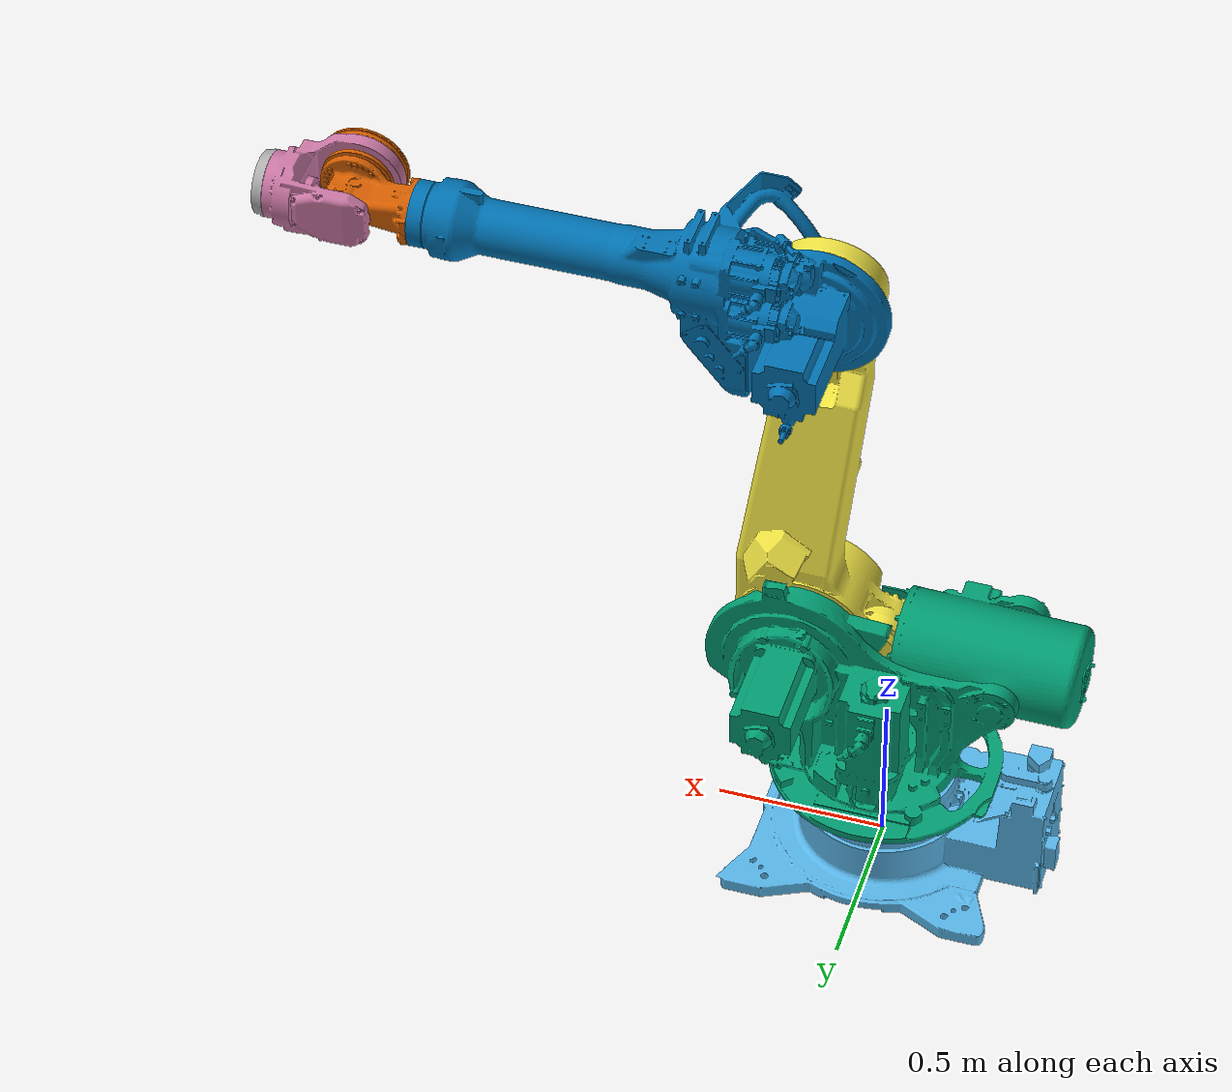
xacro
<?xml version="1.0" ?>
<robot name="$(arg robot_name)" xmlns:xacro="http://ros.org/wiki/xacro">

  <xacro:arg name="robot_name" default="motoman" />
  <xacro:arg name="prefix" default="" />

  <link name="world" />
  <joint name="$(arg prefix)base_link-world" type="fixed">
    <origin xyz="0 0 0" rpy="0 0 0"/>
    <parent link="$(arg prefix)base_link"/>
    <child link="world"/>
  </joint>

  <xacro:include filename="$(find motoman_gp250_support)/urdf/gp250_macro.xacro" />
  <xacro:motoman_gp250 prefix="$(arg prefix)"/>
</robot>

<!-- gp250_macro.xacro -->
<robot xmlns:xacro="http://ros.org/wiki/xacro">
  <xacro:macro name="motoman_gp250" params="prefix">
    <xacro:include filename="$(find motoman_resources)/urdf/common_materials.xacro"/>

    <!-- link list -->
    <link name="${prefix}base_link">
        <visual>
            <geometry>
                <mesh filename="package://motoman_gp250_support/meshes/gp250/visual/base_link_visual.stl"/>
            </geometry>
            <xacro:material_yaskawa_blue/>
        </visual>
        <collision>
            <geometry>
                <mesh filename="package://motoman_gp250_support/meshes/gp250/collision/base_link_collision.stl"/>
            </geometry>
        </collision>
    </link>
    <link name="${prefix}link_1">
        <visual>
            <geometry>
                <mesh filename="package://motoman_gp250_support/meshes/gp250/visual/link_1_s_visual.stl"/>
            </geometry>
            <xacro:material_yaskawa_blue/>
        </visual>
        <collision>
            <geometry>
                <mesh filename="package://motoman_gp250_support/meshes/gp250/collision/link_1_s_collision.stl"/>
            </geometry>
        </collision>
    </link>
    <link name="${prefix}link_2">
        <visual>
            <geometry>
                <mesh filename="package://motoman_gp250_support/meshes/gp250/visual/link_2_l_visual.stl"/>
            </geometry>
            <xacro:material_yaskawa_blue/>
        </visual>
        <collision>
            <geometry>
                <mesh filename="package://motoman_gp250_support/meshes/gp250/collision/link_2_l_no_balancer_collision.stl"/>
            </geometry>
        </collision>
    </link>
    <link name="${prefix}link_3">
        <visual>
            <geometry>
                <mesh filename="package://motoman_gp250_support/meshes/gp250/visual/link_3_u_visual.stl"/>
            </geometry>
            <xacro:material_yaskawa_blue/>
        </visual>
        <collision>
            <geometry>
                <mesh filename="package://motoman_gp250_support/meshes/gp250/collision/link_3_u_collision.stl"/>
            </geometry>
        </collision>
    </link>
    <link name="${prefix}link_4">
        <visual>
            <geometry>
                <mesh filename="package://motoman_gp250_support/meshes/gp250/visual/link_4_r_visual.stl"/>
            </geometry>
            <xacro:material_yaskawa_blue/>
        </visual>
        <collision>
            <geometry>
                <mesh filename="package://motoman_gp250_support/meshes/gp250/collision/link_4_r_collision.stl"/>
            </geometry>
        </collision>
    </link>
    <link name="${prefix}link_5">
        <visual>
            <geometry>
                <mesh filename="package://motoman_gp250_support/meshes/gp250/visual/link_5_b_visual.stl"/>
            </geometry>
            <xacro:material_yaskawa_blue/>
        </visual>
        <collision>
            <geometry>
                <mesh filename="package://motoman_gp250_support/meshes/gp250/collision/link_5_b_collision.stl"/>
            </geometry>
        </collision>
    </link>
    <link name="${prefix}link_6">
        <visual>
            <geometry>
                <mesh filename="package://motoman_gp250_support/meshes/gp250/visual/link_6_t_visual.stl"/>
            </geometry>
            <xacro:material_yaskawa_blue/>
        </visual>
        <collision>
            <geometry>
                <mesh filename="package://motoman_gp250_support/meshes/gp250/collision/link_6_t_collision.stl"/>
            </geometry>
        </collision>
    </link>
    <link name="${prefix}tool0"/>
    <!-- end of link list -->

    <!-- joint list -->
    <joint name="${prefix}joint_1" type="revolute">
        <parent link="${prefix}base_link"/>
        <child link="${prefix}link_1"/>
        <origin xyz="0 0 0.650" rpy="0 0 0" />
        <axis xyz="0 0 1" />
        <limit lower="${radians(-180)}" upper="${radians(180)}" effort="5516" velocity="${radians(180)}"/>
    </joint>
    <joint name="${prefix}joint_2" type="revolute">
        <parent link="${prefix}link_1"/>
        <child link="${prefix}link_2"/>
        <origin xyz="0.285 0 0" rpy="0 0 0" />
        <axis xyz="0 1 0" />
        <limit lower="${radians(-60)}" upper="${radians(76)}" effort="7060" velocity="${radians(178)}"/>
    </joint>
    <joint name="${prefix}joint_3" type="revolute">
        <parent link="${prefix}link_2"/>
        <child link="${prefix}link_3"/>
        <origin xyz="0 0 1.150" rpy="0 0 0" />
        <axis xyz="0 -1 0" />
        <limit lower="${radians(-77.8)}" upper="${radians(197)}" effort="3089" velocity="${radians(178)}"/>
    </joint>
    <joint name="${prefix}joint_4" type="revolute">
        <parent link="${prefix}link_3"/>
        <child link="${prefix}link_4"/>
        <origin xyz="0 0 0.250" rpy="0 0 0" />
        <axis xyz="-1 0 0" />
        <limit lower="${radians(-360)}" upper="${radians(360)}" effort="926" velocity="${radians(250)}"/>
    </joint>
    <joint name="${prefix}joint_5" type="revolute">
        <parent link="${prefix}link_4"/>
        <child link="${prefix}link_5"/>
        <origin xyz="1.285 0 0" rpy="0 0 0" />
        <axis xyz="0 -1 0" />
        <limit lower="${radians(-125)}" upper="${radians(125)}" effort="794" velocity="${radians(250)}"/>
    </joint>
    <joint name="${prefix}joint_6" type="revolute">
        <parent link="${prefix}link_5"/>
        <child link="${prefix}link_6"/>
        <origin xyz="0 0 0" rpy="0 0 0" />
        <axis xyz="-1 0 0" />
        <limit lower="${radians(-360)}" upper="${radians(360)}" effort="375" velocity="${radians(360)}"/>
    </joint>
    <joint name="${prefix}joint_6-tool0" type="fixed">
        <origin xyz="0.250 0 0" rpy="3.1415926 -1.570796 0"/>
        <parent link="${prefix}link_6"/>
        <child link="${prefix}tool0"/>
    </joint>
    <!-- end of joint list -->

    <link name="${prefix}flange" />
    <joint name="${prefix}joint_6-flange" type="fixed">
        <origin xyz="0 0 0" rpy="0 ${radians(90)} 0" />
        <parent link="${prefix}link_6" />
        <child link="${prefix}flange" />
    </joint>

    <!-- ROS base_link to Robot Manufacturer World Coordinates transform -->
    <link name="${prefix}base" />
    <joint name="${prefix}base_link-base" type="fixed">
        <origin xyz="0 0 0.650" rpy="0 0 0"/>
        <parent link="${prefix}base_link"/>
        <child link="${prefix}base"/>
    </joint>

  </xacro:macro>
</robot>
